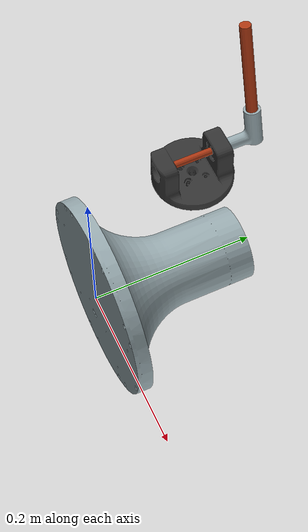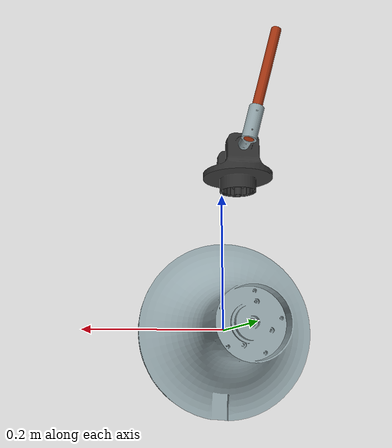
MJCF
<mujoco model="furuta_pendulum">
  <compiler angle="radian" meshdir="../meshes/"/>
  <option timestep="0.001" iterations="50" solver="Newton" tolerance="1e-10" integrator="implicit"/>

  <asset>
    <mesh name="base_link" content_type="model/stl" file="base_link.STL"/>
    <mesh name="bldc_rotor_link" content_type="model/stl" file="bldc_rotor_link.STL"/>
    <mesh name="8mm_rod_link" content_type="model/stl" file="8mm_rod_link.STL"/>
    <mesh name="rod_coupler_link" content_type="model/stl" file="rod_coupler_link.STL"/>
    <mesh name="12mm_rod_link" content_type="model/stl" file="12mm_rod_link.STL"/>
  </asset>

  <worldbody>
    <body name="mounting_plate" pos="0 0 0" euler="-1.5708 0 0">

      <geom type="mesh" contype="0" conaffinity="0" group="1" density="2700" rgba="0.596078 0.666667 0.686275 1" mesh="base_link"/>
      <geom type="mesh" contype="0" conaffinity="0" rgba="0.596078 0.666667 0.686275 1" mesh="base_link"/>

      <body name="bldc_rotor_link" pos="0.0024927 -0.16559 0.12189" quat="-0.5 0.5 0.5 0.5">

        <joint name="bldc_rotor_joint" type="hinge" pos="0 0 0" axis="0 0 1" damping="0.000378" armature="0.0000137" frictionloss="0.005"/>

        <geom type="mesh" contype="0" conaffinity="0" group="1" density="2700" rgba="0.2 0.2 0.2 1" mesh="bldc_rotor_link"/>
        <geom type="mesh" contype="0" conaffinity="0" rgba="0.2 0.2 0.2 1" mesh="bldc_rotor_link"/>

        <body name="8mm_rod_link" pos="0 0 -0.0547" quat="-0.5 0.5 0.5 0.5">

          <joint name="8mm_rod_joint" type="hinge" pos="0 0 0" axis="0 1 0" damping="0.0006" frictionloss="0.0005" armature="0.000001" stiffness="0"/>

          <geom type="mesh" contype="0" conaffinity="0" group="1" density="7850" rgba="0.67451 0.215686 0.0705882 1" mesh="8mm_rod_link"/>
          <geom type="mesh" contype="0" conaffinity="0" rgba="0.67451 0.215686 0.0705882 1" mesh="8mm_rod_link"/>
          <geom pos="0 0.039535 0" quat="-0.0892309 -0.0892254 -0.701456 0.701453" type="mesh" contype="0" conaffinity="0" group="1" density="1050" rgba="0.596078 0.666667 0.686275 1" mesh="rod_coupler_link"/>
          <geom pos="0 0.039535 0" quat="-0.0892309 -0.0892254 -0.701456 0.701453" type="mesh" contype="0" conaffinity="0" rgba="0.596078 0.666667 0.686275 1" mesh="rod_coupler_link"/>
          <geom pos="-2.72493e-07 0.0725004 1.17232e-07" quat="0.615771 -0.182371 -0.347606 -0.683182" type="mesh" contype="0" conaffinity="0" group="1" density="7850" rgba="0.67451 0.215686 0.0705882 1" mesh="12mm_rod_link"/>
          <geom pos="-2.72493e-07 0.0725004 1.17232e-07" quat="0.615771 -0.182371 -0.347606 -0.683182" type="mesh" contype="0" conaffinity="0" rgba="0.67451 0.215686 0.0705882 1" mesh="12mm_rod_link"/>

        </body>
      </body>
   </body>
  </worldbody>

  <actuator>
    <motor name="arm_motor" joint="bldc_rotor_joint" gear="0.306" ctrlrange="-1.5 1.5" ctrllimited="true"/>
  </actuator>

  <sensor>
    <jointpos name="rotor_angle" joint="bldc_rotor_joint"/>
    <jointvel name="rotor_vel" joint="bldc_rotor_joint"/>

    <jointpos name="pendulum_angle" joint="8mm_rod_joint"/>
    <jointvel name="pendulum_vel" joint="8mm_rod_joint"/>
  </sensor>

</mujoco>
